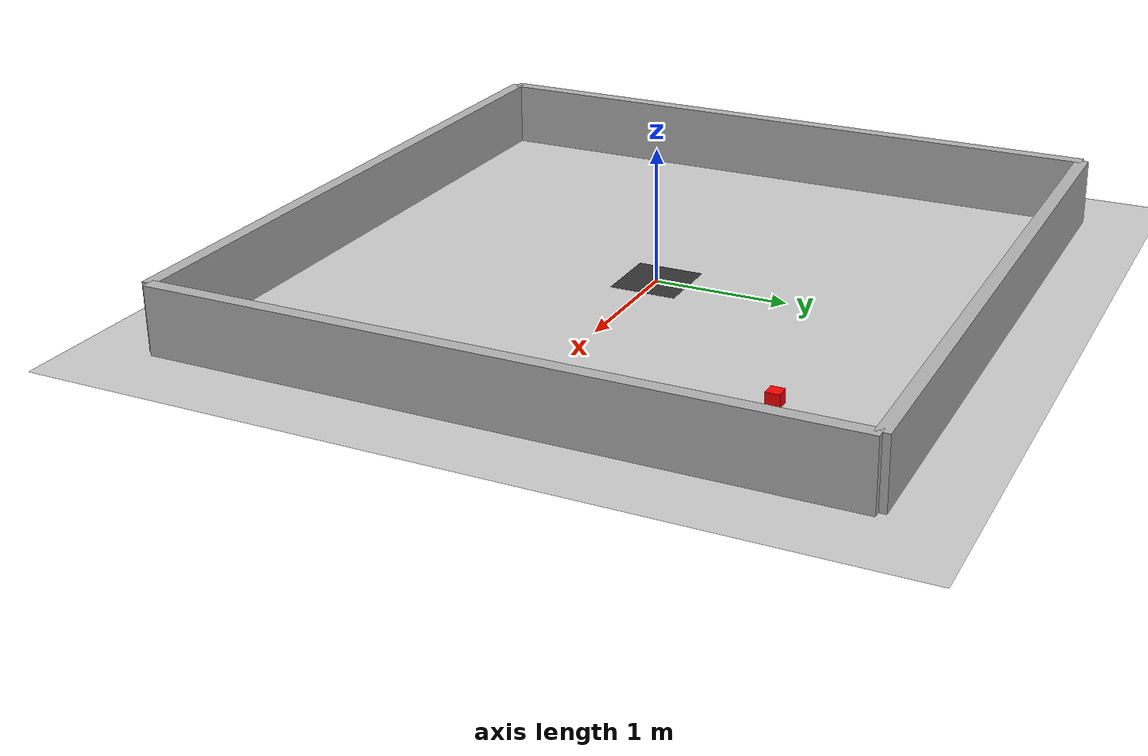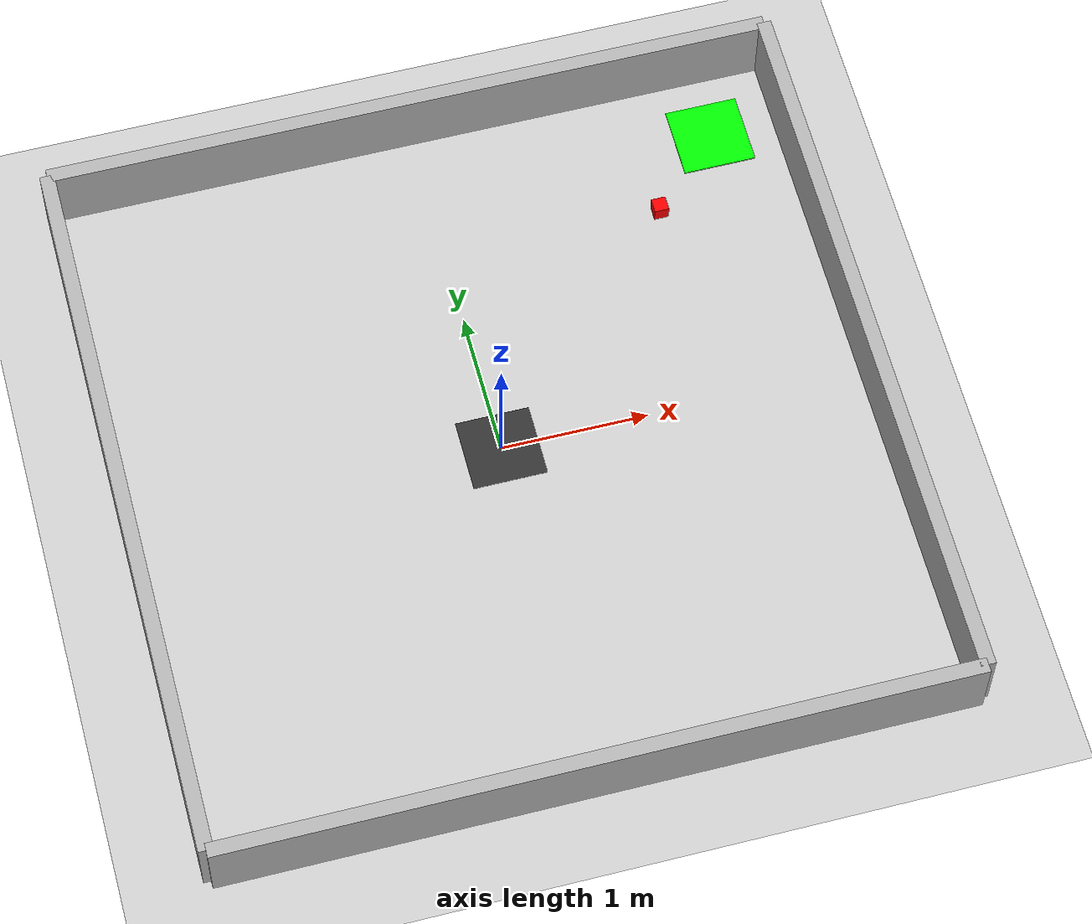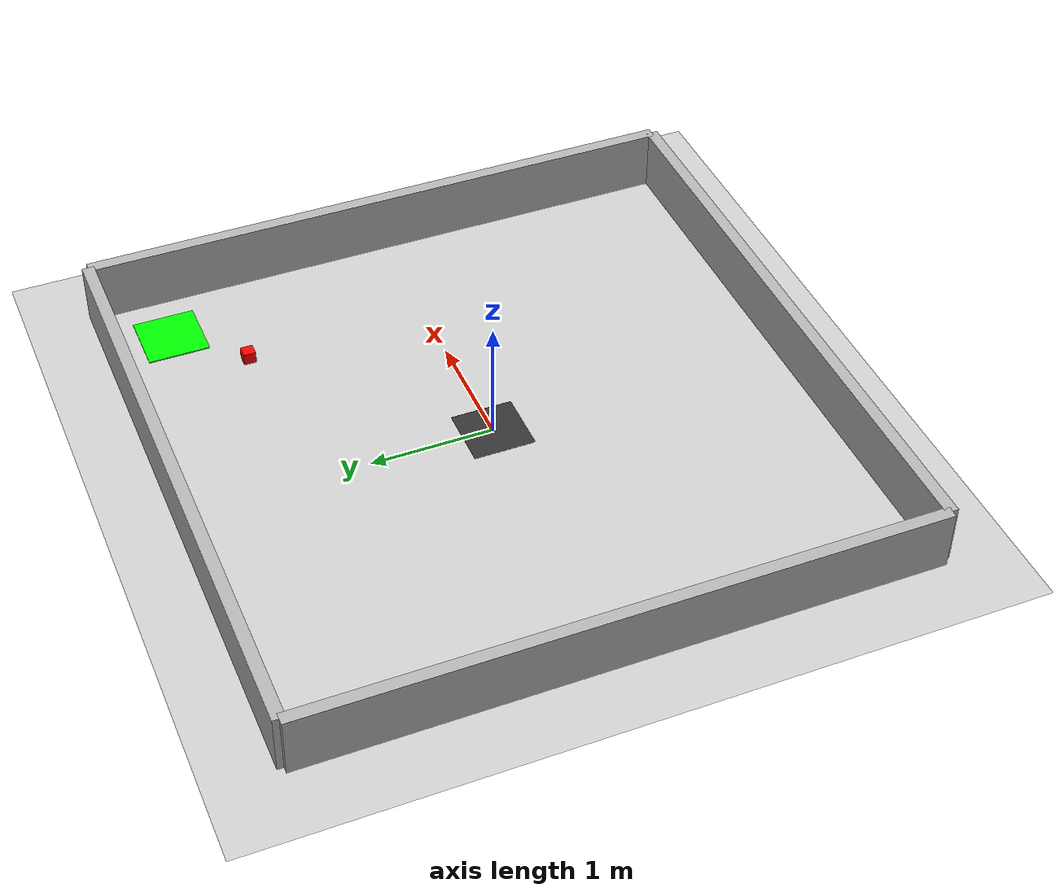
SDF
<?xml version="1.0" ?>
<sdf version="1.6">
  <world name="botzilla_world">
    <!-- A global light source using Fuel URI -->
    <include>
      <uri>https://fuel.gazebosim.org/1.0/OpenRobotics/models/Sun</uri>
    </include>
    <!-- A ground plane using Fuel URI -->
    <include>
      <uri>https://fuel.gazebosim.org/1.0/OpenRobotics/models/Ground Plane</uri>
    </include>

    <!-- Placement Zone (0.5m x 0.5m) represented as a visual box -->
    <model name="drop_off_zone">
      <static>true</static>
      <pose>2 2 0.01 0 0 0</pose>
      <link name="link">
        <visual name="visual">
          <geometry>
            <box>
              <size>0.5 0.5 0.01</size>
            </box>
          </geometry>
          <material>
            <ambient>0 1 0 1</ambient> <!-- Green for the drop zone -->
          </material>
        </visual>
      </link>
    </model>

    <!-- Starting Position Marker (0.5m x 0.5m) -->
    <model name="starting_area">
      <static>true</static>
      <pose>0 0 0.005 0 0 0</pose>
      <link name="link">
        <visual name="visual">
          <geometry>
            <box>
              <size>0.5 0.5 0.001</size>
            </box>
          </geometry>
          <material>
            <ambient>0.2 0.2 0.2 1</ambient> <!-- Dark gray -->
          </material>
        </visual>
      </link>
    </model>

    <!-- Target Cube 1 (Enlarged to 10cm) -->
    <model name="cube_1">
      <pose>1.5 1.5 0.05 0 0 0</pose> <!-- Changed from 1 0 0.05 -->
      <link name="link">
        <collision name="collision">
          <geometry>
            <box>
              <size>0.1 0.1 0.1</size>
            </box>
          </geometry>
        </collision>
        <visual name="visual">
          <geometry>
            <box>
              <size>0.1 0.1 0.1</size>
            </box>
          </geometry>
          <material>
            <ambient>1 0 0 1</ambient> <!-- Red cube -->
          </material>
        </visual>
      </link>
    </model>

    <!-- =============== Arena Walls (5m x 5m) =============== -->

    <!-- North Wall -->
    <model name="wall_north">
      <static>true</static>
      <pose>2.5 0 0.25 0 0 0</pose>
      <link name="link">
        <collision name="collision">
          <geometry><box><size>0.1 5.0 0.5</size></box></geometry>
        </collision>
        <visual name="visual">
          <geometry><box><size>0.1 5.0 0.5</size></box></geometry>
          <material><ambient>0.7 0.7 0.7 1</ambient></material>
        </visual>
      </link>
    </model>

    <!-- South Wall -->
    <model name="wall_south">
      <static>true</static>
      <pose>-2.5 0 0.25 0 0 0</pose>
      <link name="link">
        <collision name="collision">
          <geometry><box><size>0.1 5.0 0.5</size></box></geometry>
        </collision>
        <visual name="visual">
          <geometry><box><size>0.1 5.0 0.5</size></box></geometry>
          <material><ambient>0.7 0.7 0.7 1</ambient></material>
        </visual>
      </link>
    </model>

    <!-- East Wall -->
    <model name="wall_east">
      <static>true</static>
      <pose>0 2.5 0.25 0 0 0</pose>
      <link name="link">
        <collision name="collision">
          <geometry><box><size>5.0 0.1 0.5</size></box></geometry>
        </collision>
        <visual name="visual">
          <geometry><box><size>5.0 0.1 0.5</size></box></geometry>
          <material><ambient>0.7 0.7 0.7 1</ambient></material>
        </visual>
      </link>
    </model>

    <!-- West Wall -->
    <model name="wall_west">
      <static>true</static>
      <pose>0 -2.5 0.25 0 0 0</pose>
      <link name="link">
        <collision name="collision">
          <geometry><box><size>5.0 0.1 0.5</size></box></geometry>
        </collision>
        <visual name="visual">
          <geometry><box><size>5.0 0.1 0.5</size></box></geometry>
          <material><ambient>0.7 0.7 0.7 1</ambient></material>
        </visual>
      </link>
    </model>

    <!-- Physics settings for better simulation -->
    <physics type="ode">
      <real_time_update_rate>1000.0</real_time_update_rate>
      <max_step_size>0.001</max_step_size>
    </physics>
  </world>
</sdf>
